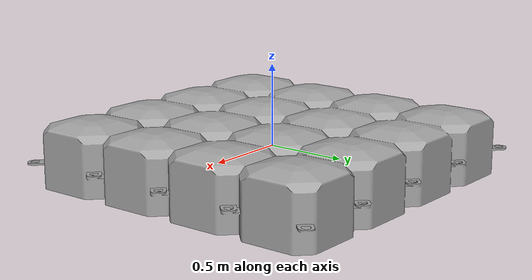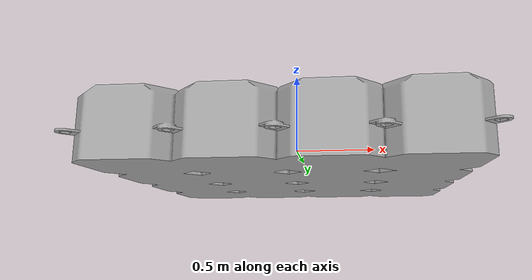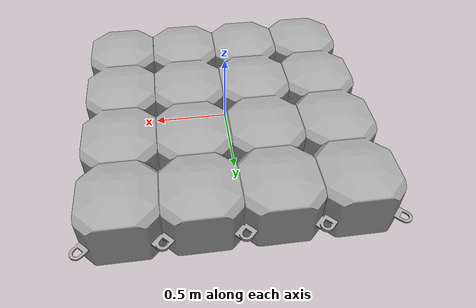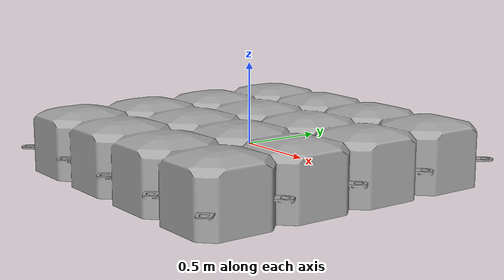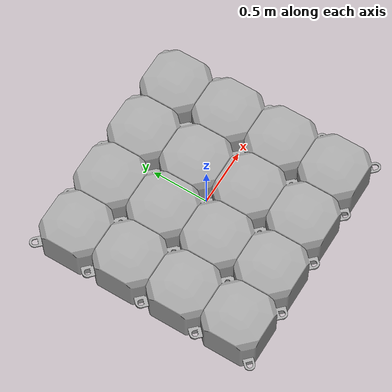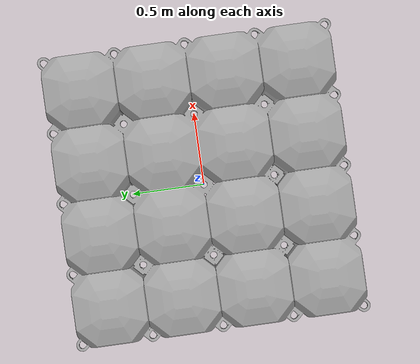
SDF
<?xml version="1.0"?>
<sdf version="1.5">
  <model name="dock_block_4x4">
    <static>false</static>
    <link name="link">
      <velocity_decay>
        <linear>0.001</linear>
        <angular>0.001</angular>
      </velocity_decay>
       <inertial>
        <pose>0 0 0 0 0 0</pose>
        <mass>160</mass>
        <inertia>
          <ixx>55.467</ixx>
          <ixy>0</ixy>
          <ixz>0</ixz>
          <iyy>55.467</iyy>
          <iyz>0</iyz>
          <izz>106.67</izz>
        </inertia>
      </inertial>
      <collision name="collision">
        <pose>0 0 0 0 0 0</pose>
        <geometry>
          <box>
            <size>2 2 0.4</size>
          </box>
        </geometry>
      </collision>
      <visual name="visual">
        <pose>-0.25 0.25 0.2 0 0 0 </pose>
        <geometry>
          <mesh>
            <uri>file://dock_block_4x4/mesh/dock_block_4x4.dae</uri>
          </mesh>
        </geometry>
      </visual>
    </link>
    <plugin name="BuoyancyPlugin" filename="libbuoyancy_gazebo_plugin.so">
      <wave_model>ocean_waves</wave_model>
      <fluid_density>1000</fluid_density>
      <fluid_level>0</fluid_level>
      <linear_drag>1000.0</linear_drag>
      <angular_drag>200.0</angular_drag>
      <buoyancy name="buoyancy_base">
        <link_name>link</link_name>
      	<pose>0 0 0.35 0 0 0</pose>
        <geometry>
					<sphere>
            <radius>0.72557</radius>
          </sphere>
				</geometry>
      </buoyancy>
    </plugin>
  </model>
</sdf>
